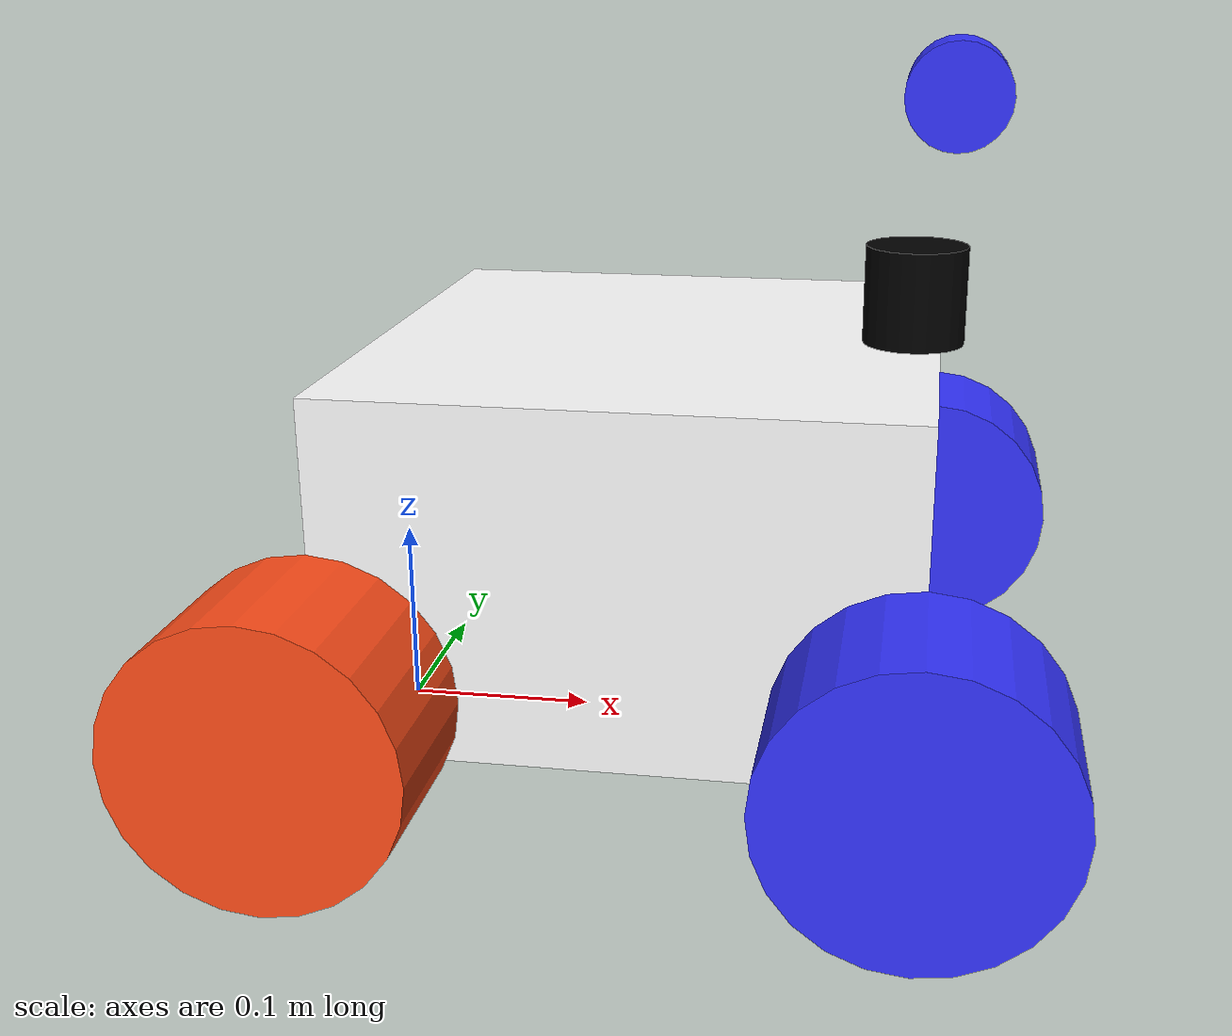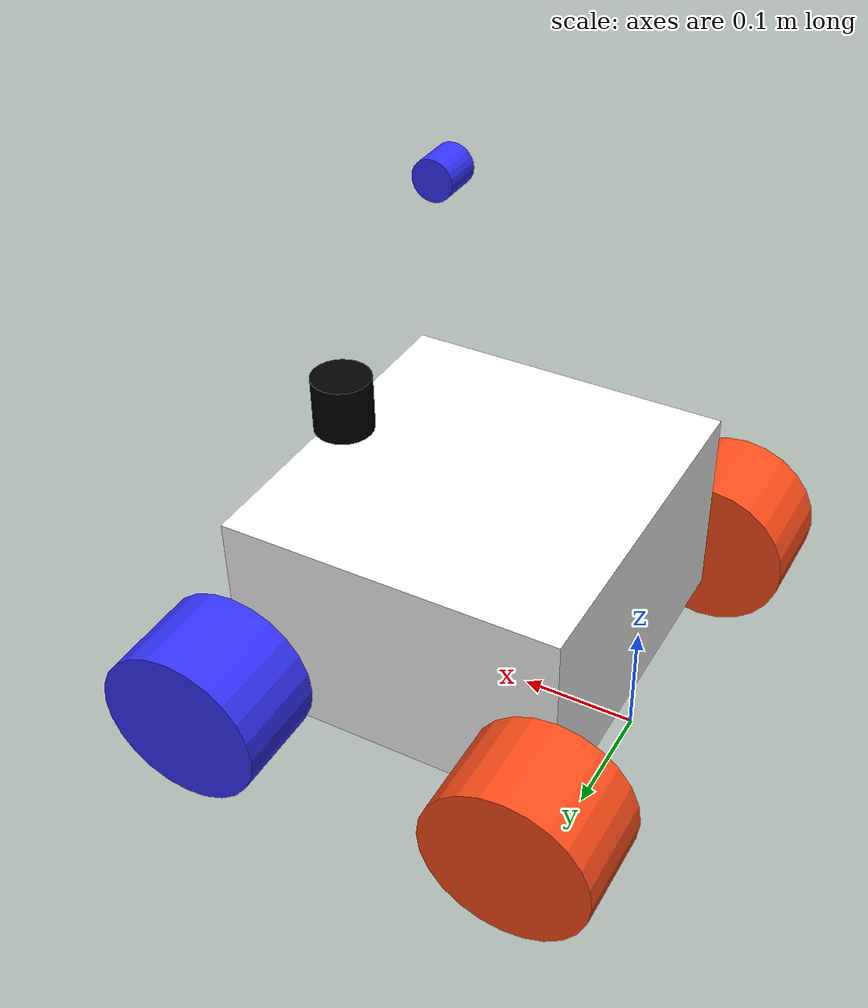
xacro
<?xml version="1.0"?>
<robot xmlns:xacro="http://www.ros.org/wiki/xacro" name="racecar">

    <xacro:include filename="robot_colors.xacro" />
    <xacro:include filename="inertial_macros.xacro" />
    <xacro:include filename="ros2_ack.xacro"/>

    <xacro:property name="wheelbase" value="0.289" />
    <xacro:property name="width" value="0.311" />
    <xacro:property name="height" value="0.178" />
    <xacro:property name="ground_offset" value="0.04" /> <!--Measure this-->
    <xacro:property name="wheel_radius" value="0.07112" /> <!--Verify this-->
    <xacro:property name="wheel_length" value="0.086" /> <!--Verify this-->
    <xacro:property name="laser_distance_from_base_link" value="0.275" /> <!--Measure this-->
    <xacro:property name="laser_height" value="0.05" /> <!--Measure this-->
    <xacro:property name="laser_radius" value="0.026" /> <!--Measure this-->

    <!--BASE LINK-->
    <link name="base_link">
        <visual>
            <origin xyz="${wheelbase/2} 0 ${ground_offset+height/2}"/>
            <geometry>
                <box size="${wheelbase} ${width} ${height}"/>
            </geometry>
            <material name="white"/>
        </visual>
        <collision>
            <origin xyz="${wheelbase/2} 0 ${ground_offset+height/2}"/>
            <geometry>
                <box size="${wheelbase} ${width} ${height}"/>
            </geometry>
            <material name="white"/>
        </collision>
        <xacro:inertial_box mass="1.69" x="${wheelbase}" y="${width}" z="${height}">
            <origin xyz="${wheelbase/2} 0 ${ground_offset+height/2}" rpy="0 0 0"/>
        </xacro:inertial_box>
    </link>
    <gazebo reference="base_link">
        <material>Gazebo/White</material>
    </gazebo>

    <!--LIDAR-->
    <joint name="base_to_laser_model" type="fixed">
        <parent link="base_link"/>
        <child link="laser_model"/>
        <origin xyz="${laser_distance_from_base_link} 0 ${ground_offset+height+(laser_height/2)}"/>
    </joint>
    <link name="laser_model">
        <visual>
        <geometry>
            <cylinder radius="${laser_radius}" length="${laser_height}"/>
        </geometry>
        <material name="black"/>
        </visual>
    </link>
    <gazebo reference="laser_model">
        <material>Gazebo/Black</material>
    </gazebo>

    <!--BACK LEFT DRIVE WHEEL-->
    <joint name="base_to_back_left_wheel" type="continuous">
        <parent link="base_link"/>
        <child link="back_left_wheel"/>
        <origin xyz="0 ${(wheel_length+width)/2} ${wheel_radius}" rpy="-${pi/2} 0 0"/>
        <axis xyz="0 0 1"/>
    </joint>
    <link name="back_left_wheel">
        <visual>
            <geometry>
                <cylinder radius="${wheel_radius}" length="${wheel_length}"/>
            </geometry>
            <material name="orange"/>
        </visual>
        <collision>
            <geometry>
                <cylinder radius="${wheel_radius}" length="${wheel_length}"/>
            </geometry>
            <material name="orange"/>
        </collision>
        <xacro:inertial_cylinder mass="0.1" length="${wheel_length}" radius="${wheel_radius}">
            <origin xyz="0 0 0" rpy="0 0 0"/>
        </xacro:inertial_cylinder>
    </link>
    <gazebo reference="back_left_wheel">
        <material>Gazebo/Black</material>
    </gazebo>

    <!--BACK RIGHT DRIVE WHEEL-->
    <joint name="base_to_back_right_wheel" type="continuous">
        <parent link="base_link"/>
        <child link="back_right_wheel"/>
        <origin xyz="0 ${-(wheel_length+width)/2} ${wheel_radius}" rpy="${pi/2} 0 0"/>
        <axis xyz="0 0 -1"/>
    </joint>

    <link name="back_right_wheel">
        <visual>
            <geometry>
                <cylinder radius="${wheel_radius}" length="${wheel_length}"/>
            </geometry>
            <material name="orange"/>
        </visual>
        <collision>
            <geometry>
                <cylinder radius="${wheel_radius}" length="${wheel_length}"/>
            </geometry>
            <material name="orange"/>
        </collision>
        <xacro:inertial_cylinder mass="0.1" length="${wheel_length}" radius="${wheel_radius}">
            <origin xyz="0 0 0" rpy="0 0 0"/>
        </xacro:inertial_cylinder>
    </link>
    <gazebo reference="back_right_wheel">
        <material>Gazebo/Orange</material>
    </gazebo>

    <!--FRONT LEFT-->
    <joint name="front_left_hinge_joint" type="revolute">
        <parent link="base_link"/>
        <child link="front_left_hinge"/>
        <origin xyz="${wheelbase} ${(wheel_length+width)/2} ${wheel_radius}" rpy="0 ${-pi/2} 0"/>
        <limit upper="0.5236" lower="-0.5236" velocity="20" effort="1"/>
        <axis xyz="1 0 0"/>
    </joint>

    <link name="front_left_hinge">
		<visual>
            <geometry>
                <cylinder radius="0.02" length="0.04"/>
            </geometry>
            <material name="blue"/>
            <origin xyz="0 0 0" rpy="${pi/2} 0 0"/>
		</visual>
        <collision>
            <geometry>
                <cylinder radius="0.02" length="0.04"/>
            </geometry>
            <material name="blue"/>
            <origin xyz="0 0 0" rpy="${pi/2} 0 0"/>
        </collision>
        <xacro:inertial_cylinder mass="0.1" length="0.04" radius="0.02">
            <origin xyz="0 0 0" rpy="0 0 0"/>
        </xacro:inertial_cylinder>
    </link>
    <gazebo reference="front_left_wheel">
        <material>Gazebo/Blue</material>
    </gazebo>

    <joint name="front_left_hinge_to_wheel" type="continuous">
		<parent link="front_left_hinge"/>
		<child link="front_left_wheel"/>
    </joint>

    <link name="front_left_wheel">
		<visual>
            <geometry>
                <cylinder radius="${wheel_radius}" length="${wheel_length}"/>
            </geometry>
            <material name="blue"/>
            <origin xyz="0 0 0" rpy="${pi/2} 0 0"/>
		</visual>
        <collision>
            <geometry>
                <cylinder radius="${wheel_radius}" length="${wheel_length}"/>
            </geometry>
            <material name="blue"/>
            <origin xyz="0 0 0" rpy="${pi/2} 0 0"/>
        </collision>
        <xacro:inertial_cylinder mass="0.1" length="${wheel_length}" radius="${wheel_radius}">
            <origin xyz="0 0 0" rpy="0 0 0"/>
        </xacro:inertial_cylinder>
    </link>
    <gazebo reference="front_left_wheel">
        <material>Gazebo/Black</material>
    </gazebo>

    <!--FRONT RIGHT-->
    <joint name="front_right_hinge_joint" type="revolute">
        <parent link="base_link"/>
        <child link="front_right_hinge"/>
        <origin xyz="${wheelbase} ${-(wheel_length+width)/2} ${wheel_radius}" rpy="0 ${-pi/2} 0"/>
        <limit upper="0.5236" lower="-0.5236" velocity="20" effort="1"/>
        <axis xyz="1 0 0"/>
    </joint>

    <link name="front_right_hinge">
    	<visual>
            <geometry>
                <cylinder radius="0.02" length="0.04"/>
            </geometry>
            <material name="blue"/>
            <origin xyz="${wheelbase} 0 0" rpy="${pi/2} 0 0"/>
		</visual>
        <collision>
            <geometry>
                <cylinder radius="0.02" length="0.04"/>
            </geometry>
            <material name="blue"/>
            <origin xyz="${wheelbase} 0 0" rpy="${pi/2} 0 0"/>
        </collision>
        <xacro:inertial_cylinder mass="0.1" length="0.04" radius="0.02">
            <origin xyz="${wheelbase} 0 0" rpy="${pi/2} 0 0"/>
        </xacro:inertial_cylinder>
    </link>

    <joint name="front_right_hinge_to_wheel" type="continuous">
        <parent link="front_right_hinge"/>
        <child link="front_right_wheel"/>
    </joint>

    <link name="front_right_wheel">
        <visual>
        <geometry>
            <cylinder radius="${wheel_radius}" length="${wheel_length}"/>
        </geometry>
        <material name="blue"/>
        <origin xyz="0 0 0" rpy="${pi/2} 0 0"/>
        </visual>
        <collision>
            <geometry>
                <cylinder radius="${wheel_radius}" length="${wheel_length}"/>
            </geometry>
        </collision>
        <xacro:inertial_cylinder mass="0.1" length="${wheel_length}" radius="${wheel_radius}">
            <origin xyz="0 0 0" rpy="0 0 0"/>
        </xacro:inertial_cylinder>
    </link>

</robot>

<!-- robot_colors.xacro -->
<robot xmlns:xacro="http://www.ros.org/wiki/xacro"  >

    <material name="white">
        <color rgba="1 1 1 1" />
    </material>

    <material name="orange">
        <color rgba="1 0.3 0.1 1" />
    </material>

    <material name="blue">
        <color rgba="0.2 0.2 1 1" />
    </material>

    <material name="black">
        <color rgba="0 0 0 1" />
    </material>

</robot>
